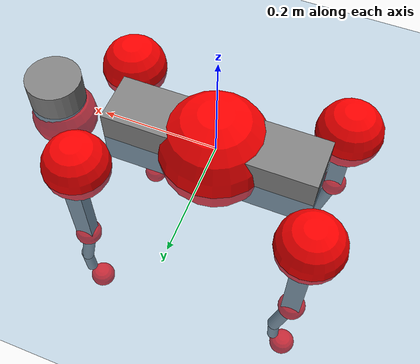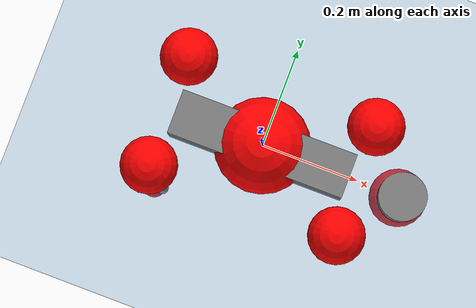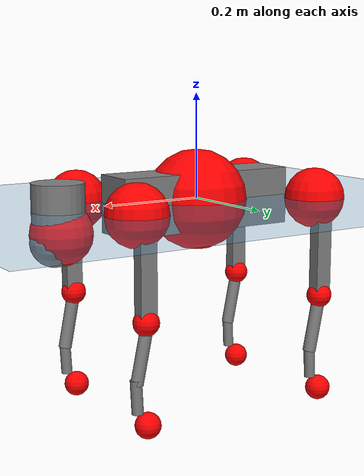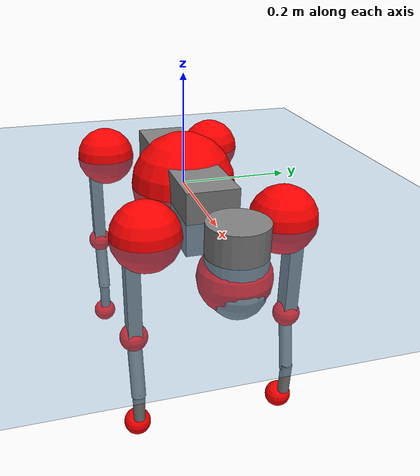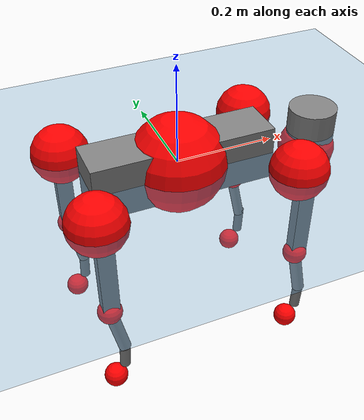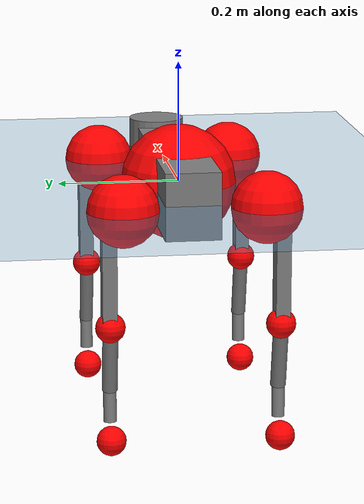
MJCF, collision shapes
<mujoco model="go2">
  <compiler angle="radian" assetdir="assets" balanceinertia="true" inertiafromgeom="false"/>

  <option timestep="0.005" density="1.2" viscosity="2e-05"/>

  <size nkey="1"/>

  <visual>
    <quality shadowsize="8192"/>
    <map shadowclip="0.5"/>
  </visual>

  <default>
    <default class="/">
      <geom contype="0" conaffinity="0" group="1" solref="-1000 -80"/>
      <site size="0.01 0.005 0.005" group="5"/>
      <general forcelimited="true" biastype="affine" gainprm="20" biasprm="0 -20 -0.5"/>
      <default class="go2">
        <joint armature="0.01" damping="0.01" frictionloss="0.2"/>
        <geom condim="1" margin="0.001"/>
        <default class="visual">
          <geom type="mesh" group="2"/>
        </default>
        <default class="collision">
          <geom group="3"/>
          <default class="foot">
            <geom size="0.022 0 0" condim="6" priority="1" friction="0.8 0.02 0.01" solimp="0.015 1 0.022"/>
          </default>
        </default>
        <default class="reward_collision_sphere">
          <geom group="5" rgba="1 0 0 1"/>
        </default>
      </default>
    </default>
  </default>

  <asset>
    <texture type="skybox" colorspace="auto" name="//unnamed_texture_0" builtin="gradient" rgb1="0.95 0.95 0.95" rgb2="0.95 0.95 0.95" width="100" height="600"/>
    <texture type="2d" colorspace="auto" name="texplane" builtin="checker" rgb1="0.345 0.575 0.748" rgb2="0.345 0.575 0.748" markrgb="1 1 1" width="512" height="512"/>
    <material name="MatPlane" class="/" texture="texplane" texuniform="true" texrepeat="2 2" specular="0.9"/>
    <material name="metal" class="/" rgba="0.9 0.95 0.95 1"/>
    <material name="black" class="/" rgba="0 0 0 1"/>
    <material name="white" class="/"/>
    <material name="gray" class="/" rgba="0.671705 0.692426 0.77427 1"/>
    <mesh name="base_0" class="/" file="base_0.obj"/>
    <mesh name="base_1" class="/" file="base_1.obj"/>
    <mesh name="base_2" class="/" file="base_2.obj"/>
    <mesh name="base_3" class="/" file="base_3.obj"/>
    <mesh name="base_4" class="/" file="base_4.obj"/>
    <mesh name="hip_0" class="/" file="hip_0.obj"/>
    <mesh name="hip_1" class="/" file="hip_1.obj"/>
    <mesh name="thigh_0" class="/" file="thigh_0.obj"/>
    <mesh name="thigh_1" class="/" file="thigh_1.obj"/>
    <mesh name="thigh_mirror_0" class="/" file="thigh_mirror_0.obj"/>
    <mesh name="thigh_mirror_1" class="/" file="thigh_mirror_1.obj"/>
    <mesh name="calf_0" class="/" file="calf_0.obj"/>
    <mesh name="calf_1" class="/" file="calf_1.obj"/>
    <mesh name="calf_mirror_0" class="/" file="calf_mirror_0.obj"/>
    <mesh name="calf_mirror_1" class="/" file="calf_mirror_1.obj"/>
    <mesh name="foot" class="/" file="foot.obj"/>
  </asset>

  <worldbody>
    <geom name="floor" class="/" size="100 100 0.125" type="plane" group="0" material="MatPlane"/>
    <light name="toplight_shadow" class="/" pos="0 0 5" dir="0.0990148 0.0990148 -0.990148" type="directional" ambient="0.04 0.04 0.04" diffuse="0.55 0.55 0.55" specular="0.12 0.12 0.12"/>
    <light name="toplight_fill" class="/" pos="0 0 5" dir="0.0990148 0.0990148 -0.990148" type="directional" castshadow="false" ambient="0.04 0.04 0.04" diffuse="0.3 0.3 0.3" specular="0.08 0.08 0.08"/>
    <body name="trunk" childclass="go2" pos="0.000402 -1.99041e-05 -0.00222365" quat="1 -0.000909509 -0.000225871 0.000278318">
      <inertial pos="0.0219526 0.00157952 -0.00480934" quat="-0.00733849 0.709911 0.00186247 0.704251" mass="6.41968" diaginertia="0.127039 0.0938057 0.0141983"/>
      <joint name="//unnamed_joint_0" type="free" armature="0" damping="0" frictionloss="0"/>
      <geom name="//unnamed_geom_1" class="visual" material="black" mesh="base_0"/>
      <geom name="//unnamed_geom_2" class="visual" material="black" mesh="base_1"/>
      <geom name="//unnamed_geom_3" class="visual" material="black" mesh="base_2"/>
      <geom name="//unnamed_geom_4" class="visual" material="white" mesh="base_3"/>
      <geom name="//unnamed_geom_5" class="visual" material="gray" mesh="base_4"/>
      <geom name="trunk_1" class="collision" size="0.182228 0.0452907 0.0552207" type="box"/>
      <geom name="trunk_2" class="collision" size="0.0484392 0.0435953" pos="0.293581 0 0.00891515" type="cylinder"/>
      <geom name="trunk_3" class="collision" size="0.0455329" pos="0.301822 0 -0.0534909"/>
      <geom name="//unnamed_geom_9" class="reward_collision_sphere" size="0.0968784"/>
      <geom name="//unnamed_geom_10" class="reward_collision_sphere" size="0.0581271" pos="0.28843 0 -0.0401182"/>
      <site name="imu" pos="-0.0273152 -0.00121071 0.0327572" size="0.00968784"/>
      <camera name="track" pos="0 -1.96946 0" quat="0.707107 0.707107 0 0" mode="trackcom"/>
      <camera name="ego_camera" pos="0.321394 0 0.0401182" quat="-0.5 -0.5 0.5 0.5"/>
      <body name="FL_hip" pos="0.198483 0.0454018 0.000826866" quat="1 8.33055e-05 6.86042e-05 3.86501e-05">
        <inertial pos="-0.00708475 0.00175882 -0.00238567" quat="0.500249 0.504677 0.496687 0.498352" mass="0.620121" diaginertia="0.00103843 0.000560146 0.000271286"/>
        <joint name="FL_hip_joint" pos="0 0 0" axis="0.999981 0.00131021 -0.00601339" range="-1.05105 1.03945" armature="0.00967914" damping="0.000299924" frictionloss="0.188671"/>
        <geom name="//unnamed_geom_11" class="visual" material="metal" mesh="hip_0"/>
        <geom name="//unnamed_geom_12" class="visual" material="gray" mesh="hip_1"/>
        <geom name="//unnamed_geom_13" class="collision" size="0.0445641 0.0193757" pos="0 0.0787784 0" quat="0.707107 0.707107 0 0" type="cylinder"/>
        <geom name="//unnamed_geom_14" class="reward_collision_sphere" size="0.0581271" pos="0 0.0689311 0"/>
        <body name="FL_thigh" pos="-0.002135 0.0930894 0.00231851" quat="1 -3.33082e-06 -2.62351e-05 -7.41685e-05">
          <inertial pos="-0.00498859 -0.0219288 -0.029286" quat="0.830777 0.0886162 -0.0188577 0.549182" mass="1.01996" diaginertia="0.00673839 0.0053043 0.000478133"/>
          <joint name="FL_thigh_joint" pos="0 0 0" axis="-0.0026097 0.999982 0.00532551" stiffness="0.00358192" range="-1.56091 3.49621" armature="0.00940532" damping="0.0107283" frictionloss="0.194317"/>
          <geom name="//unnamed_geom_15" class="visual" material="metal" mesh="thigh_0"/>
          <geom name="//unnamed_geom_16" class="visual" material="gray" mesh="thigh_1"/>
          <geom name="//unnamed_geom_17" class="collision" size="0.103176 0.0118676 0.0164693" pos="0 0 -0.0949463" quat="0.707107 0 0.707107 0" type="box"/>
          <body name="FL_calf" pos="-0.00062613 -0.000622341 -0.189891" quat="1 -6.73582e-05 2.47085e-05 -2.25557e-05">
            <inertial pos="0.0040986 -0.00251367 -0.12499" quat="0.711172 0.000953028 -0.00383627 0.703007" mass="0.218746" diaginertia="0.00168737 0.0013639 2.99463e-05"/>
            <joint name="FL_calf_joint" pos="0 0 0" axis="0.00206337 0.999997 -0.00105462" stiffness="0.00573506" range="-2.77268 -0.83971" armature="0.00987828" damping="0.0107665" frictionloss="0.216228"/>
            <geom name="//unnamed_geom_18" class="visual" material="gray" mesh="calf_0"/>
            <geom name="//unnamed_geom_19" class="visual" material="black" mesh="calf_1"/>
            <geom name="FL_calf0" class="collision" size="0.0116254 0.0581271" pos="0.00824087 0 -0.0534909" quat="0.994493 0 -0.104807 0" type="cylinder"/>
            <geom name="//unnamed_geom_21" class="collision" size="0.0106566 0.0314855" pos="0.0206022 0 -0.131944" quat="0.999688 0 0.0249974 0" type="cylinder"/>
            <geom name="//unnamed_geom_22" class="visual" pos="0 0 -0.189893" quat="1 0 0 0" material="black" mesh="foot"/>
            <geom name="FL_foot" class="foot" size="0.0169033" pos="-0.00206022 0 -0.189893"/>
            <geom name="//unnamed_geom_24" class="reward_collision_sphere" size="0.0242196"/>
            <geom name="//unnamed_geom_25" class="reward_collision_sphere" size="0.0242196" pos="-0.00206022 0 -0.189893"/>
            <site name="FL_foot" class="foot" pos="-0.00206022 0 -0.189893" size="0.00968784"/>
          </body>
        </body>
      </body>
      <body name="FR_hip" pos="0.199981 -0.0462647 -6.65296e-05" quat="0.999999 0.00118204 0.000404292 -0.000308939">
        <inertial pos="-0.00448607 -0.00200442 -0.000321904" quat="0.496982 0.507525 0.506569 0.488686" mass="0.641568" diaginertia="0.00103691 0.000560332 0.000274537"/>
        <joint name="FR_hip_joint" pos="0 0 0" axis="1 -6.03888e-05 -4.19747e-06" range="-1.09358 1.05896" armature="0.00937554" damping="0.00718549" frictionloss="0.195203"/>
        <geom name="//unnamed_geom_26" class="visual" pos="0 8.12055e-10 3.48307e-08" quat="4.63268e-05 1 0 0" material="metal" mesh="hip_0"/>
        <geom name="//unnamed_geom_27" class="visual" pos="0 1.31644e-09 -8.61497e-08" quat="4.63268e-05 1 0 0" material="gray" mesh="hip_1"/>
        <geom name="//unnamed_geom_28" class="collision" size="0.0445641 0.0193757" pos="0 -0.0787784 0" quat="0.707107 0.707107 0 0" type="cylinder"/>
        <geom name="//unnamed_geom_29" class="reward_collision_sphere" size="0.0581271" pos="0 -0.0689311 0"/>
        <body name="FR_thigh" pos="0.000148817 -0.0941525 0.00237365" quat="1 -0.000207581 -0.000172344 1.53761e-06">
          <inertial pos="-0.00300953 0.0219562 -0.0278894" quat="0.550187 -0.0230706 0.0823435 0.830651" mass="1.06098" diaginertia="0.00691741 0.00533698 0.000490082"/>
          <joint name="FR_thigh_joint" pos="0 0 0" axis="-4.19159e-05 -0.999998 0.00209711" stiffness="0.00684291" range="-3.49375 1.5742" armature="0.0101529" damping="0.00421351" frictionloss="0.18377"/>
          <geom name="//unnamed_geom_30" class="visual" material="metal" mesh="thigh_mirror_0"/>
          <geom name="//unnamed_geom_31" class="visual" material="gray" mesh="thigh_mirror_1"/>
          <geom name="//unnamed_geom_32" class="collision" size="0.103176 0.0118676 0.0164693" pos="0 0 -0.0949463" quat="0.707107 0 0.707107 0" type="box"/>
          <body name="FR_calf" pos="-0.00241785 -0.000182778 -0.188538" quat="1 -2.5847e-06 5.75299e-05 -9.72927e-05">
            <inertial pos="0.00711197 -0.00107357 -0.125062" quat="0.697703 -0.00735403 -0.00653413 0.71632" mass="0.213976" diaginertia="0.00167886 0.00134994 2.92018e-05"/>
            <joint name="FR_calf_joint" pos="0 0 0" axis="0.000625735 -1 0.00038307" stiffness="0.0032912" range="0.840692 2.71217" armature="0.00966018" damping="0.00146711" frictionloss="0.200697"/>
            <geom name="//unnamed_geom_33" class="visual" material="gray" mesh="calf_mirror_0"/>
            <geom name="//unnamed_geom_34" class="visual" material="black" mesh="calf_mirror_1"/>
            <geom name="FR_calf0" class="collision" size="0.0125942 0.0581271" pos="0.0103011 0 -0.0534909" quat="0.995004 0 -0.0998334 0" type="cylinder"/>
            <geom name="//unnamed_geom_36" class="collision" size="0.0106566 0.0314855" pos="0.0206022 0 -0.131944" quat="0.999688 0 0.0249974 0" type="cylinder"/>
            <geom name="//unnamed_geom_37" class="visual" pos="0 0 -0.189893" quat="1 0 0 0" material="black" mesh="foot"/>
            <geom name="FR_foot" class="foot" size="0.0212921" pos="-0.00206022 0 -0.189893"/>
            <geom name="//unnamed_geom_39" class="reward_collision_sphere" size="0.0242196"/>
            <geom name="//unnamed_geom_40" class="reward_collision_sphere" size="0.0242196" pos="-0.00206022 0 -0.189893"/>
            <site name="FR_foot" class="foot" pos="-0.00206022 0 -0.189893" size="0.00968784"/>
          </body>
        </body>
      </body>
      <body name="RL_hip" pos="-0.199007 0.0455321 0.00130262" quat="1 -5.29906e-05 2.21772e-05 -3.91983e-05">
        <inertial pos="0.00631513 0.000728021 -0.00209886" quat="0.50528 0.49943 0.499908 0.495332" mass="0.614623" diaginertia="0.00103827 0.000546867 0.000268074"/>
        <joint name="RL_hip_joint" pos="0 0 0" axis="-0.999871 -0.0105569 -0.0121362" stiffness="0.000877183" range="-1.08153 1.082" armature="0.0104043" damping="0.0126987" frictionloss="0.191523"/>
        <geom name="//unnamed_geom_41" class="visual" pos="-1.20737e-09 0 -2.36673e-07" quat="4.63268e-05 0 1 0" material="metal" mesh="hip_0"/>
        <geom name="//unnamed_geom_42" class="visual" pos="-1.95729e-09 0 -2.09895e-07" quat="4.63268e-05 0 1 0" material="gray" mesh="hip_1"/>
        <geom name="//unnamed_geom_43" class="collision" size="0.0445641 0.0193757" pos="0 0.0787784 0" quat="0.707107 0.707107 0 0" type="cylinder"/>
        <geom name="//unnamed_geom_44" class="reward_collision_sphere" size="0.0581271" pos="0 0.0689311 0"/>
        <body name="RL_thigh" pos="0.00086858 0.0921385 0.000978007" quat="1 3.40152e-05 0.00029679 -0.00017811">
          <inertial pos="-0.00143918 -0.0223951 -0.0315078" quat="0.829535 0.0848906 -0.0199842 0.551603" mass="1.07577" diaginertia="0.00728497 0.00559068 0.000512438"/>
          <joint name="RL_thigh_joint" pos="0 0 0" axis="0.0126262 0.999827 -0.0136467" stiffness="0.000814164" range="-0.526464 4.54169" armature="0.00982475" damping="0.00168106" frictionloss="0.185667"/>
          <geom name="//unnamed_geom_45" class="visual" material="metal" mesh="thigh_0"/>
          <geom name="//unnamed_geom_46" class="visual" material="gray" mesh="thigh_1"/>
          <geom name="//unnamed_geom_47" class="collision" size="0.103176 0.0118676 0.0164693" pos="0 0 -0.0949463" quat="0.707107 0 0.707107 0" type="box"/>
          <body name="RL_calf" pos="-0.000735126 -0.0015595 -0.191151" quat="1 5.86074e-05 6.85348e-05 0.000398435">
            <inertial pos="0.00429614 0.000227396 -0.128324" quat="0.710607 -0.0055391 0.00110509 0.703567" mass="0.218682" diaginertia="0.00171797 0.00135598 2.93752e-05"/>
            <joint name="RL_calf_joint" pos="0 0 0" axis="-0.00257734 0.999954 0.00928566" stiffness="0.00215933" range="-2.71803 -0.884999" armature="0.0105835" damping="0" frictionloss="0.192038"/>
            <geom name="//unnamed_geom_48" class="visual" material="gray" mesh="calf_0"/>
            <geom name="//unnamed_geom_49" class="visual" material="black" mesh="calf_1"/>
            <geom name="RL_calf0" class="collision" size="0.0125942 0.0581271" pos="0.0103011 0 -0.0534909" quat="0.995004 0 -0.0998334 0" type="cylinder"/>
            <geom name="//unnamed_geom_51" class="collision" size="0.0106566 0.0314855" pos="0.0206022 0 -0.131944" quat="0.999688 0 0.0249974 0" type="cylinder"/>
            <geom name="//unnamed_geom_52" class="visual" pos="0 0 -0.189893" quat="1 0 0 0" material="black" mesh="foot"/>
            <geom name="RL_foot" class="foot" size="0.0190642" pos="-0.00206022 0 -0.189893"/>
            <geom name="//unnamed_geom_54" class="reward_collision_sphere" size="0.0242196"/>
            <geom name="//unnamed_geom_55" class="reward_collision_sphere" size="0.0242196" pos="-0.00206022 0 -0.189893"/>
            <site name="RL_foot" class="foot" pos="-0.00206022 0 -0.189893" size="0.00968784"/>
          </body>
        </body>
      </body>
      <body name="RR_hip" pos="-0.196912 -0.0464695 0.000287997" quat="1 6.257e-05 -0.000148 6.21306e-05">
        <inertial pos="0.00442934 -0.00180474 0.000586235" quat="0.49222 0.502026 0.496819 0.508784" mass="0.614402" diaginertia="0.00108082 0.000565487 0.000276021"/>
        <joint name="RR_hip_joint" pos="0 0 0" axis="-0.999924 -0.0118473 -0.00339612" range="-1.03117 1.0469" armature="0.00965408" damping="0.00558465" frictionloss="0.216792"/>
        <geom name="//unnamed_geom_56" class="visual" pos="1.2058e-09 8.12055e-10 -2.71503e-07" quat="2.14617e-09 4.63268e-05 4.63268e-05 -1" material="metal" mesh="hip_0"/>
        <geom name="//unnamed_geom_57" class="visual" pos="1.96118e-09 1.31644e-09 -1.23745e-07" quat="2.14617e-09 4.63268e-05 4.63268e-05 -1" material="gray" mesh="hip_1"/>
        <geom name="//unnamed_geom_58" class="collision" size="0.0445641 0.0193757" pos="0 -0.0787784 0" quat="0.707107 0.707107 0 0" type="cylinder"/>
        <geom name="//unnamed_geom_59" class="reward_collision_sphere" size="0.0581271" pos="0 -0.0689311 0"/>
        <body name="RR_thigh" pos="0.000754985 -0.0944278 -0.00182643" quat="1 -3.32066e-05 -5.11593e-05 0.000129687">
          <inertial pos="-0.00256255 0.0229931 -0.0310984" quat="0.551458 -0.0189983 0.0851018 0.829633" mass="1.02906" diaginertia="0.00711546 0.00549357 0.000497299"/>
          <joint name="RR_thigh_joint" pos="0 0 0" axis="0.000745657 -0.999998 -0.00206613" stiffness="0.00209261" range="-4.53612 0.506178" armature="0.00965186" damping="0.0190935" frictionloss="0.20121"/>
          <geom name="//unnamed_geom_60" class="visual" material="metal" mesh="thigh_mirror_0"/>
          <geom name="//unnamed_geom_61" class="visual" material="gray" mesh="thigh_mirror_1"/>
          <geom name="//unnamed_geom_62" class="collision" size="0.103176 0.0118676 0.0164693" pos="0 0 -0.0949463" quat="0.707107 0 0.707107 0" type="box"/>
          <body name="RR_calf" pos="-0.00119918 0.000834323 -0.191899" quat="0.999999 -0.00104977 -0.00044391 0.000138374">
            <inertial pos="0.00543295 0.000360053 -0.125743" quat="0.703257 0.00384879 -0.00257362 0.710921" mass="0.219781" diaginertia="0.00172422 0.00134426 2.91486e-05"/>
            <joint name="RR_calf_joint" pos="0 0 0" axis="0.012013 -0.999899 -0.00762503" range="0.869056 2.74037" armature="0.00961027" damping="0.00441656" frictionloss="0.201928"/>
            <geom name="//unnamed_geom_63" class="visual" material="gray" mesh="calf_mirror_0"/>
            <geom name="//unnamed_geom_64" class="visual" material="black" mesh="calf_mirror_1"/>
            <geom name="RR_calf0" class="collision" size="0.0125942 0.0581271" pos="0.0103011 0 -0.0534909" quat="0.995004 0 -0.0998334 0" type="cylinder"/>
            <geom name="//unnamed_geom_66" class="collision" size="0.0106566 0.0314855" pos="0.0206022 0 -0.131944" quat="0.999688 0 0.0249974 0" type="cylinder"/>
            <geom name="//unnamed_geom_67" class="visual" pos="0 0 -0.189893" quat="1 0 0 0" material="black" mesh="foot"/>
            <geom name="RR_foot" class="foot" size="0.0237821" pos="-0.00206022 0 -0.189893"/>
            <geom name="//unnamed_geom_69" class="reward_collision_sphere" size="0.0242196"/>
            <geom name="//unnamed_geom_70" class="reward_collision_sphere" size="0.0242196" pos="-0.00206022 0 -0.189893"/>
            <site name="RR_foot" class="foot" pos="-0.00206022 0 -0.189893" size="0.00968784"/>
          </body>
        </body>
      </body>
    </body>
  </worldbody>

  <contact>
    <pair class="/" geom1="floor" geom2="FL_foot" name="//unnamed_contact_0"/>
    <pair class="/" geom1="floor" geom2="FR_foot" name="//unnamed_contact_1"/>
    <pair class="/" geom1="floor" geom2="RL_foot" name="//unnamed_contact_2"/>
    <pair class="/" geom1="floor" geom2="RR_foot" name="//unnamed_contact_3"/>
  </contact>

  <actuator>
    <general name="FL_hip" class="/" joint="FL_hip_joint" forcerange="-23.0771 23.0771" gainprm="19.2616" biasprm="0 -19.2616 -0.49775"/>
    <general name="FL_thigh" class="/" joint="FL_thigh_joint" forcerange="-22.992 22.992" gainprm="19.2616" biasprm="0 -19.2616 -0.49775"/>
    <general name="FL_calf" class="/" joint="FL_calf_joint" forcerange="-43.4283 43.4283" gainprm="19.2616" biasprm="0 -19.2616 -0.49775"/>
    <general name="FR_hip" class="/" joint="FR_hip_joint" forcerange="-22.8712 22.8712" gainprm="19.2616" biasprm="0 -19.2616 -0.49775"/>
    <general name="FR_thigh" class="/" joint="FR_thigh_joint" forcerange="-22.5784 22.5784" gainprm="19.2616" biasprm="0 -19.2616 -0.49775"/>
    <general name="FR_calf" class="/" joint="FR_calf_joint" forcerange="-44.2896 44.2896" gainprm="19.2616" biasprm="0 -19.2616 -0.49775"/>
    <general name="RL_hip" class="/" joint="RL_hip_joint" forcerange="-23.1479 23.1479" gainprm="19.2616" biasprm="0 -19.2616 -0.49775"/>
    <general name="RL_thigh" class="/" joint="RL_thigh_joint" forcerange="-21.1353 21.1353" gainprm="19.2616" biasprm="0 -19.2616 -0.49775"/>
    <general name="RL_calf" class="/" joint="RL_calf_joint" forcerange="-46.9418 46.9418" gainprm="19.2616" biasprm="0 -19.2616 -0.49775"/>
    <general name="RR_hip" class="/" joint="RR_hip_joint" forcerange="-23.0449 23.0449" gainprm="19.2616" biasprm="0 -19.2616 -0.49775"/>
    <general name="RR_thigh" class="/" joint="RR_thigh_joint" forcerange="-23.8164 23.8164" gainprm="19.2616" biasprm="0 -19.2616 -0.49775"/>
    <general name="RR_calf" class="/" joint="RR_calf_joint" forcerange="-44.1401 44.1401" gainprm="19.2616" biasprm="0 -19.2616 -0.49775"/>
  </actuator>

  <sensor>
    <gyro site="imu" name="imu_angular_velocity"/>
    <velocimeter site="imu" name="imu_linear_velocity"/>
    <framelinvel objtype="site" objname="FL_foot" name="FL_foot_global_linear_velocity"/>
    <framelinvel objtype="site" objname="FR_foot" name="FR_foot_global_linear_velocity"/>
    <framelinvel objtype="site" objname="RL_foot" name="RL_foot_global_linear_velocity"/>
    <framelinvel objtype="site" objname="RR_foot" name="RR_foot_global_linear_velocity"/>
  </sensor>

  <keyframe>
    <key name="home" qpos="0 0 0.325 1 0 0 0 0.1 0.8 -1.5 -0.1 -0.8 1.5 -0.1 0.8 -1.5 0.1 -0.8 1.5"/>
  </keyframe>
</mujoco>
